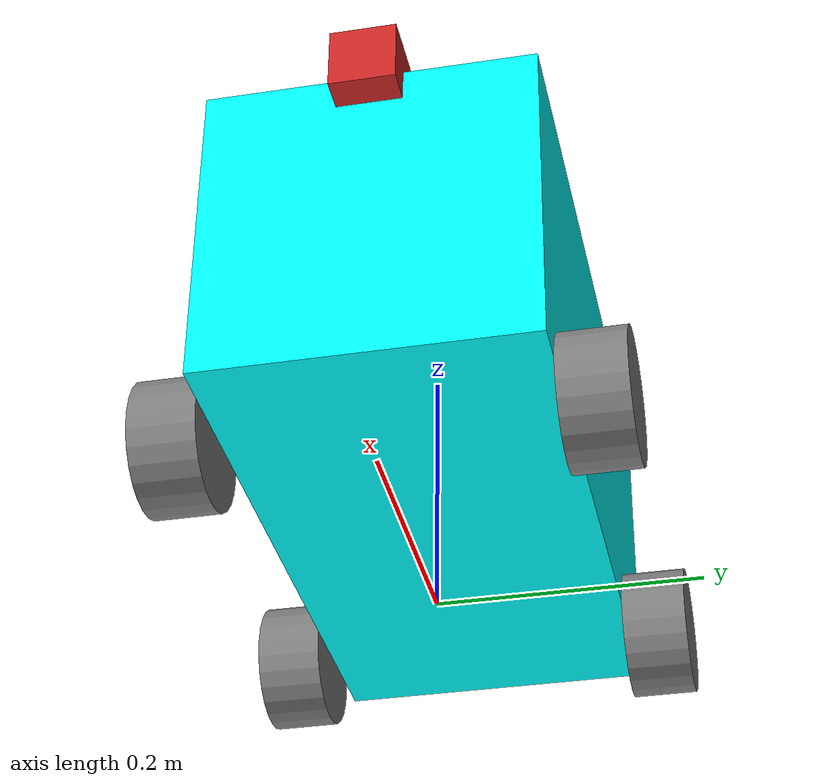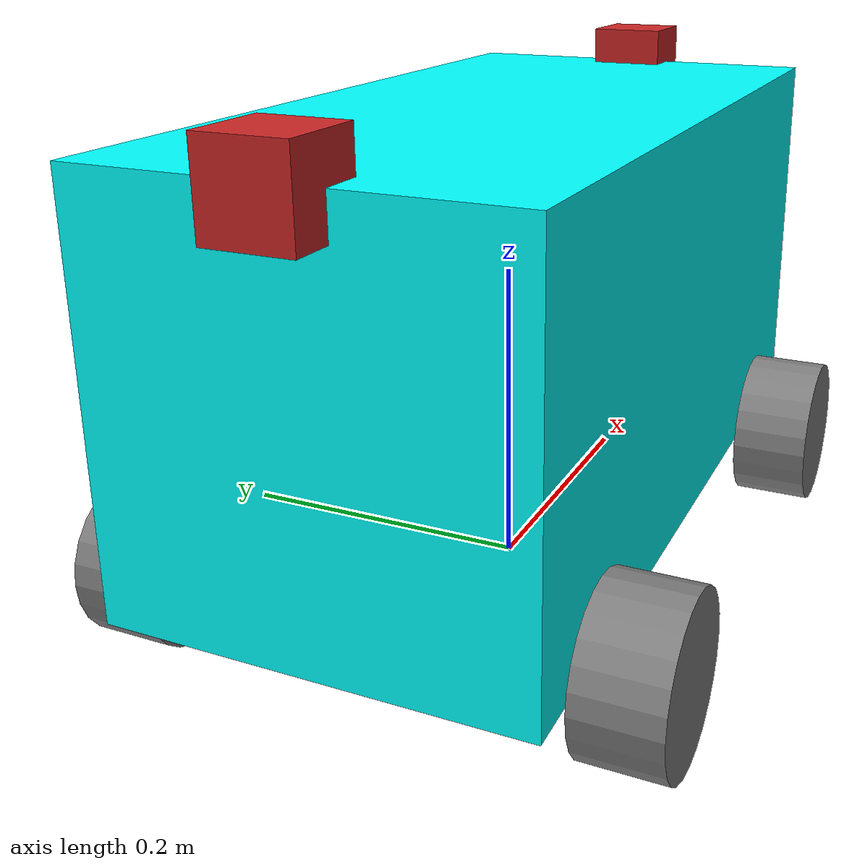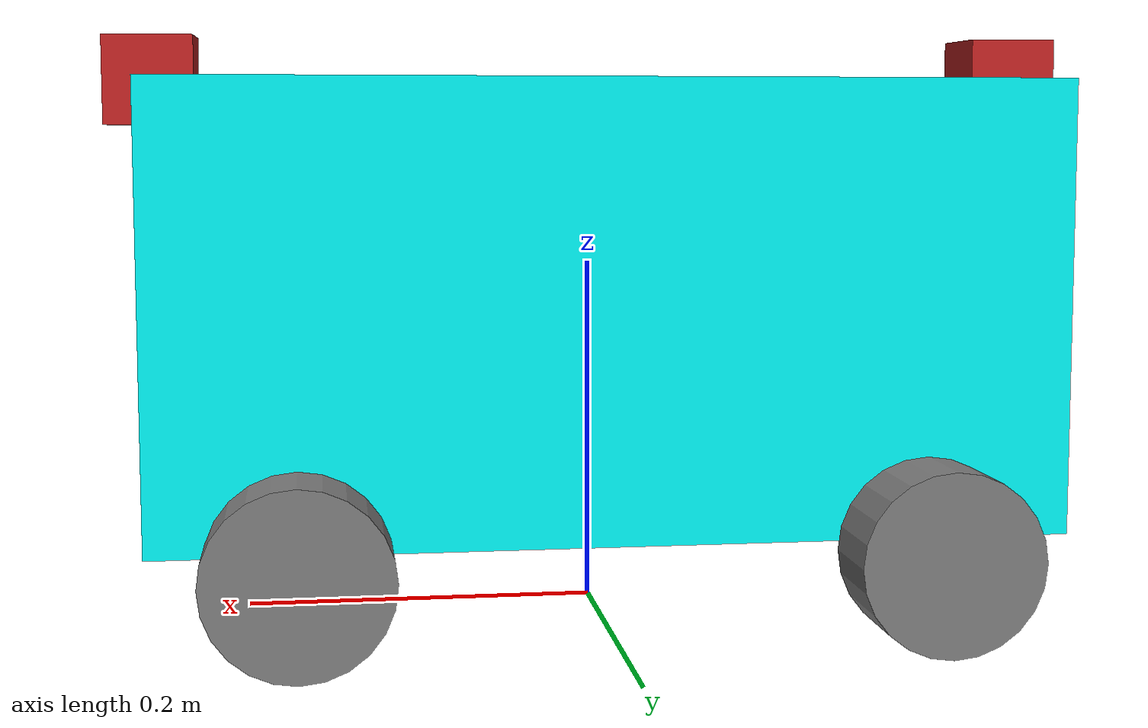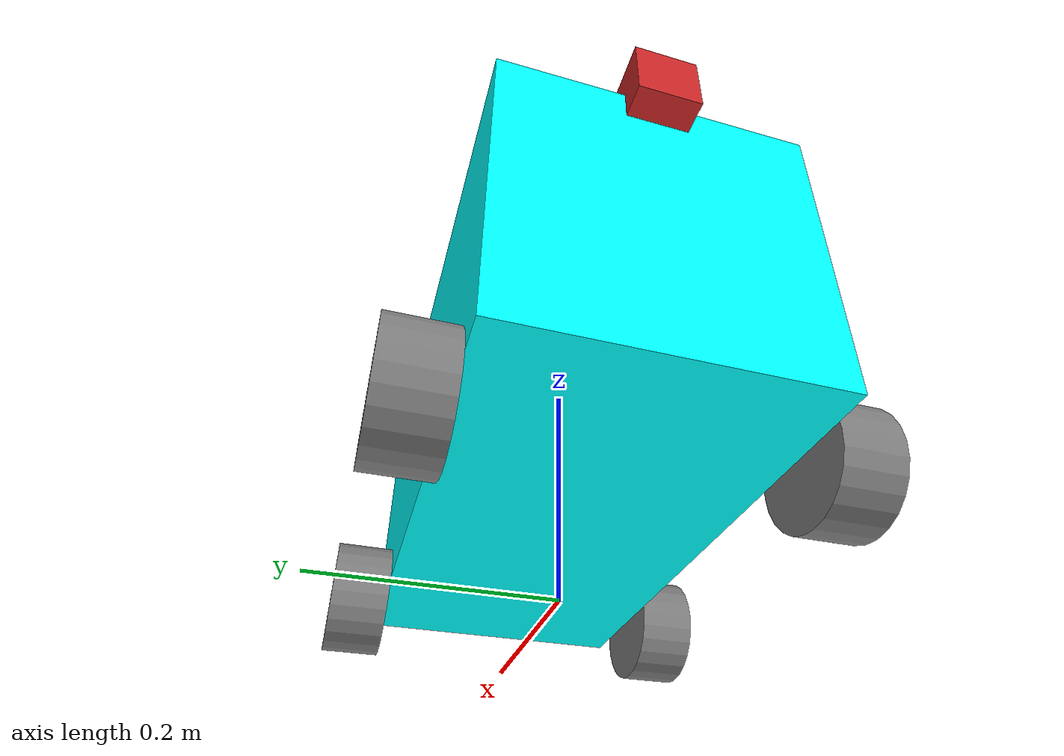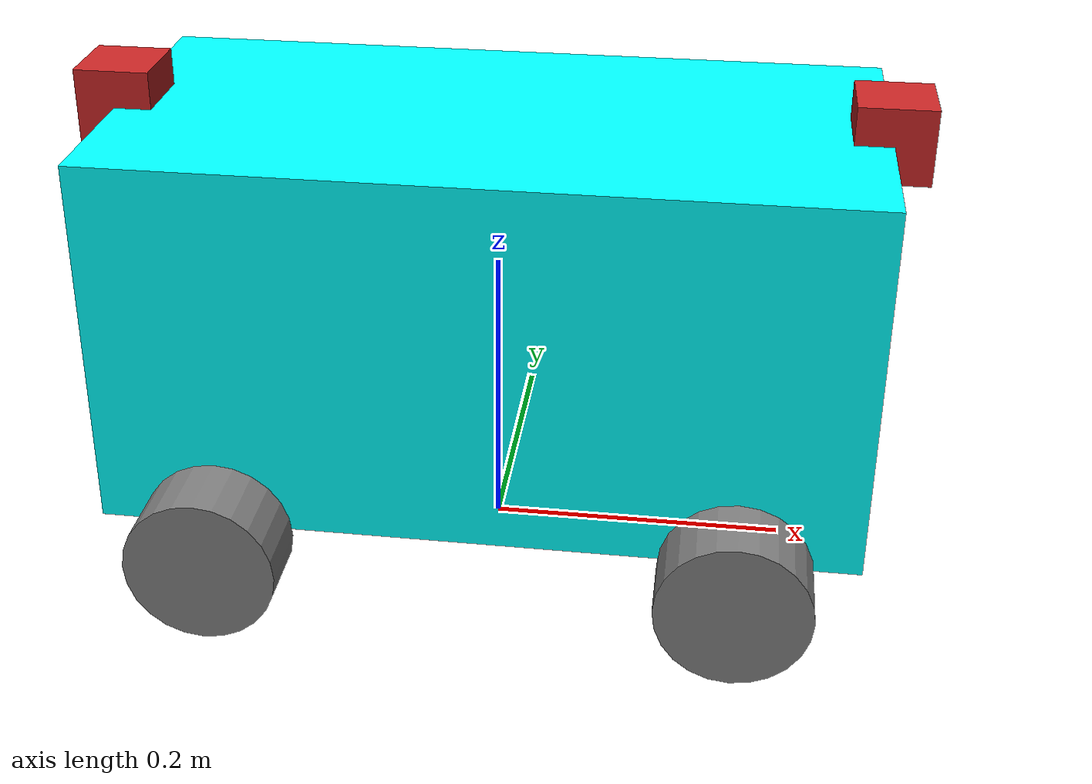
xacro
<?xml version="1.0"?>
<robot name="lunabot" xmlns:xacro="http://ros.org/wiki/xacro">

    <!-- Define robot constants -->
    <xacro:property name="base_length" value="0.5"/>
    <xacro:property name="base_width" value="0.25"/>
    <xacro:property name="base_height" value="0.25"/>

    <xacro:property name="wheel_radius" value="0.05"/>
    <xacro:property name="wheel_width" value="0.05"/>
    <xacro:property name="wheel_xoff" value="0.17"/>
    <xacro:property name="wheel_yoff" value="0.15"/>
    <xacro:property name="wheel_zoff" value="0.13"/>

    <xacro:property name="camera_size" value="0.05"/>

    <!-- Define intertial property macros -->
    <xacro:macro name="box_inertia" params="m w h d">
        <inertial>
            <origin xyz="0 0 0" rpy="0 0 0"/>
            <mass value="${m}"/>
            <inertia ixx="${(m/12) * (h*h + d*d)}" ixy="0.0" ixz="0.0" iyy="${(m/12) * (w*w + d*d)}" iyz="0.0" izz="${(m/12) * (w*w + h*h)}"/>
        </inertial>
    </xacro:macro>

    <xacro:macro name="cylinder_inertia" params="m r h">
        <inertial>
            <origin xyz="0 0 0" rpy="${pi/2} 0 0"/>
            <mass value="${m}"/>
            <inertia ixx="${(m/12) * (3*r*r + h*h)}" ixy = "0" ixz = "0" iyy="${(m/12) * (3*r*r + h*h)}" iyz = "0" izz="${(m/2) * (r*r)}"/>
        </inertial>
    </xacro:macro>

    <!-- Base Footprint -->
    <link name="base_footprint">
        <origin xyz="0 0 0" rpy="0 0 0"/>
    </link>

    <!-- Robot Base -->
    <link name="base_link">
        <visual>
            <origin xyz="0 0 0" rpy="0 0 0"/>
            <geometry>
                <box size="${base_length} ${base_width} ${base_height}"/>
            </geometry>
            <material name="Cyan">
                <color rgba="0 1.0 1.0 1.0"/>
            </material>
        </visual>
        <collision>
            <origin xyz="0 0 0" rpy="0 0 0"/>
            <geometry>
                <box size="${base_length} ${base_width} ${base_height}"/>
            </geometry>
        </collision>
        <xacro:box_inertia m="5" w="${base_length}" h="${base_width}" d="${base_height}"/>
    </link>
    <joint name="base_j" type="fixed">
        <parent link="base_footprint"/>
        <child link="base_link"/>
        <origin xyz="0 0 ${wheel_zoff+wheel_radius}" rpy="0 0 0"/>
    </joint>

    <!-- Wheels -->
    <xacro:macro name="wheel" params="prefix x_reflect y_reflect">
        <link name="${prefix}_link">
            <visual>
                <origin xyz="0 0 0" rpy="${pi/2} 0 0"/>
                <geometry>
                    <cylinder radius="${wheel_radius}" length="${wheel_width}"/>
                </geometry>
                <material name="Gray">
                <color rgba="0.5 0.5 0.5 1.0"/>
                </material>
            </visual>
            <collision>
                <origin xyz="0 0 0" rpy="${pi/2} 0 0"/>
                <geometry>
                    <cylinder radius="${wheel_radius}" length="${wheel_width}"/>
                </geometry>
                <surface>
                    <friction>
                        <ode>
                            <mu>100.0</mu>
                            <mu2>100.0</mu2>
                        </ode>
                    </friction>
                    <contact>
                        <ode>
                            <min_depth>0.01</min_depth>
                        </ode>
                    </contact>
                </surface>
            </collision>
            <xacro:cylinder_inertia m="1" r="${wheel_radius}" h="${wheel_width}"/>
        </link>

        <joint name="${prefix}_j" type="continuous">
            <parent link="base_link"/>
            <child link="${prefix}_link"/>
            <origin xyz="${x_reflect*wheel_xoff} ${y_reflect*wheel_yoff} ${-wheel_zoff}" rpy="0 0 0"/>
            <axis xyz="0 1 0"/>
        </joint>
    </xacro:macro>

    <xacro:wheel prefix="wheel_f_r" x_reflect="1.0" y_reflect="-1.0"/>
    <xacro:wheel prefix="wheel_f_l" x_reflect="1.0" y_reflect="1.0"/>
    <xacro:wheel prefix="wheel_b_r" x_reflect="-1.0" y_reflect="-1.0"/>
    <xacro:wheel prefix="wheel_b_l" x_reflect="-1.0" y_reflect="1.0"/>

    <link name="depth_camera_link">
        <origin xyz="0 0 0" rpy="0 0 0"/>
        <visual>
            <geometry>
                <box size="${camera_size} ${camera_size} ${camera_size}"/>
            </geometry>
            <collision>
                <box size="${camera_size} ${camera_size} ${camera_size}"/>
            </collision>
            <xacro:box_inertia m="0.1" w="${camera_size}" h="${camera_size}" d="${camera_size}"/>
        </visual>
    </link>
    <joint name="depth_camera_j" type="fixed">
        <parent link="base_link"/>
        <child link="depth_camera_link"/>
        <origin xyz="${base_length/2} 0 ${base_height/2}" rpy="0 0 0"/>
    </joint>
    <link name="depth_camera_optical_link"/>
    <joint name="depth_camera_optical_j" type="fixed">
        <parent link="depth_camera_link"/>
        <child link="depth_camera_optical_link"/>
        <origin xyz="0 0 0" rpy="${-pi/2} 0 ${-pi/2}"/>
    </joint>

    <link name="camera_link">
        <origin xyz="0 0 0" rpy="0 0 0"/>
        <visual>
            <geometry>
                <box size="${camera_size} ${camera_size} ${camera_size}"/>
            </geometry>
            <collision>
                <box size="${camera_size} ${camera_size} ${camera_size}"/>
            </collision>
        </visual>
    </link>
    <joint name="camera_j" type="fixed">
        <parent link="base_link"/>
        <child link="camera_link"/>
        <origin xyz="${-base_length/2} 0 ${base_height/2}" rpy="0 0 ${pi}"/>
    </joint>
    <link name="camera_optical_link"/>
    <joint name="camera_optical_j" type="fixed">
        <parent link="camera_link"/>
        <child link="camera_optical_link"/>
        <origin xyz="0 0 0" rpy="${-pi/2} 0 ${-pi/2}"/>
    </joint>

    <gazebo>
        <plugin name='diff_drive_f' filename='libgazebo_ros_diff_drive.so'>
            <update_rate>30</update_rate>
            <left_joint>wheel_f_l_j</left_joint>
            <right_joint>wheel_f_r_j</right_joint>
            <wheel_separation>0.3</wheel_separation>
            <wheel_diameter>0.1</wheel_diameter>
            <max_wheel_torque>20</max_wheel_torque>
            <max_wheel_acceleration>1.0</max_wheel_acceleration>
            <command_topic>cmd_vel</command_topic>
            <publish_odom>false</publish_odom>
            <publish_odom_tf>false</publish_odom_tf>
            <publish_wheel_tf>true</publish_wheel_tf>

            <odometry_frame>odom</odometry_frame>
            <robot_base_frame>base_link</robot_base_frame>
        </plugin>

        <plugin name='diff_drive_b' filename='libgazebo_ros_diff_drive.so'>
            <update_rate>30</update_rate>
            <left_joint>wheel_b_l_j</left_joint>
            <right_joint>wheel_b_r_j</right_joint>
            <wheel_separation>0.3</wheel_separation>
            <wheel_diameter>0.1</wheel_diameter>
            <max_wheel_torque>20</max_wheel_torque>
            <max_wheel_acceleration>1.0</max_wheel_acceleration>
            <command_topic>cmd_vel</command_topic>
            <publish_odom>false</publish_odom>
            <publish_odom_tf>false</publish_odom_tf>
            <publish_wheel_tf>true</publish_wheel_tf>

            <odometry_frame>odom</odometry_frame>
            <robot_base_frame>base_link</robot_base_frame>
        </plugin>
    </gazebo>

    <gazebo reference="depth_camera_link">
        <material>Gazebo/Red</material>
        <sensor name="depth_camera" type="depth">
            <always_on>1</always_on>
            <update_rate>10</update_rate>
            <visualize>true</visualize>
            <camera>
                <horizontal_fov>1.51844</horizontal_fov>
                <image>
                    <width>320</width>
                    <height>320</height>
                    <format>R8G8B8</format>
                </image>
                <clip>
                    <near>0.05</near>
                    <far>10.0</far>
                </clip>
            </camera>
            <plugin filename="libgazebo_ros_camera.so" name="depth_camera_controller">
                <frame_name>depth_camera_optical_link</frame_name>
            </plugin>
        </sensor>
    </gazebo>

    <gazebo reference="camera_link">
        <material>Gazebo/Red</material>
        <sensor name="camera" type="camera">
            <always_on>1</always_on>
            <update_rate>10</update_rate>
            <visualize>true</visualize>
            <camera>
                <horizontal_fov>1.089</horizontal_fov>
                <image>
                    <width>320</width>
                    <height>320</height>
                    <format>R8G8B8</format>
                </image>
                <clip>
                    <near>0.05</near>
                    <far>10.0</far>
                </clip>
            </camera>
            <plugin filename="libgazebo_ros_camera.so" name="camera_controller">
                <frame_name>camera_optical_link</frame_name>
            </plugin>
        </sensor>
    </gazebo>

</robot>
